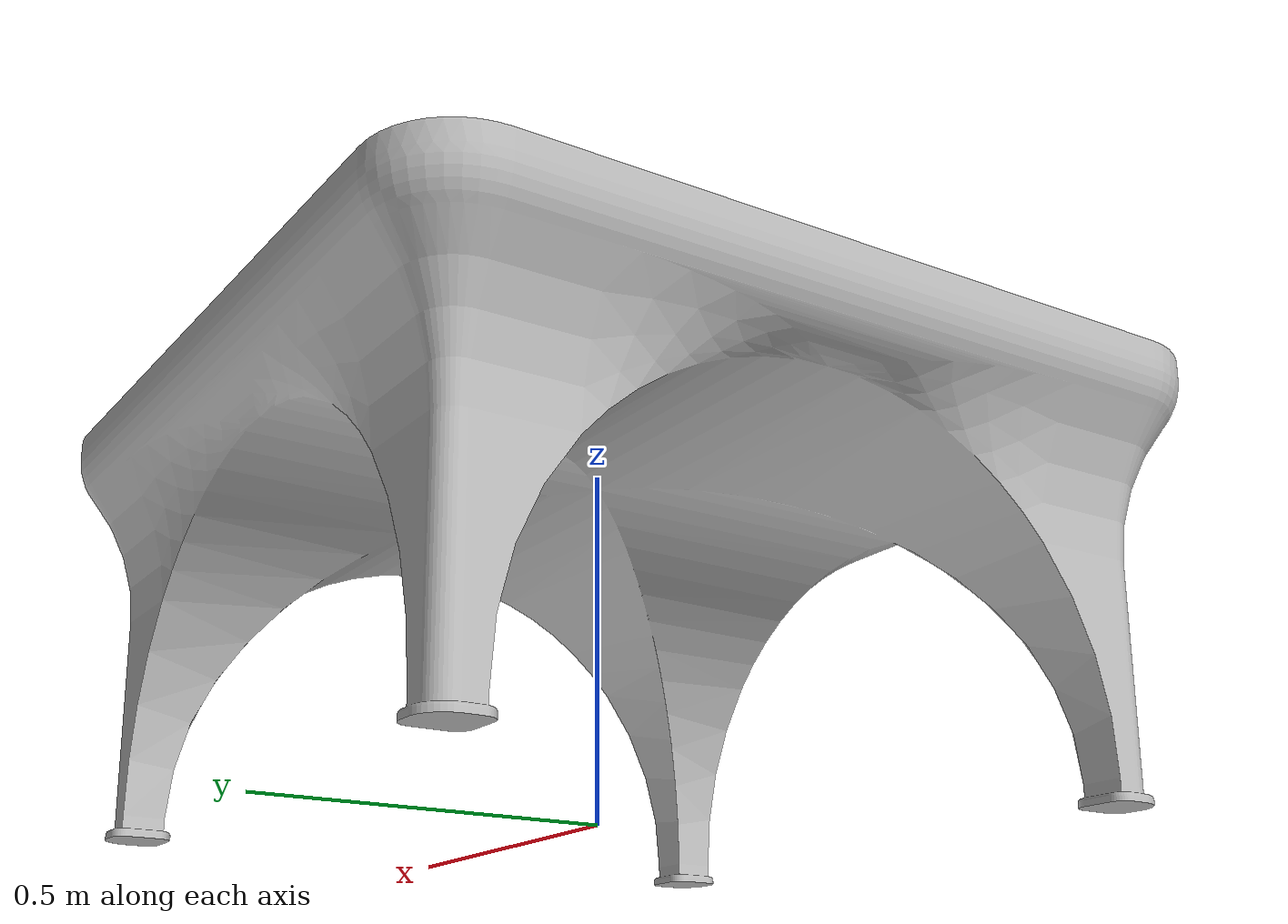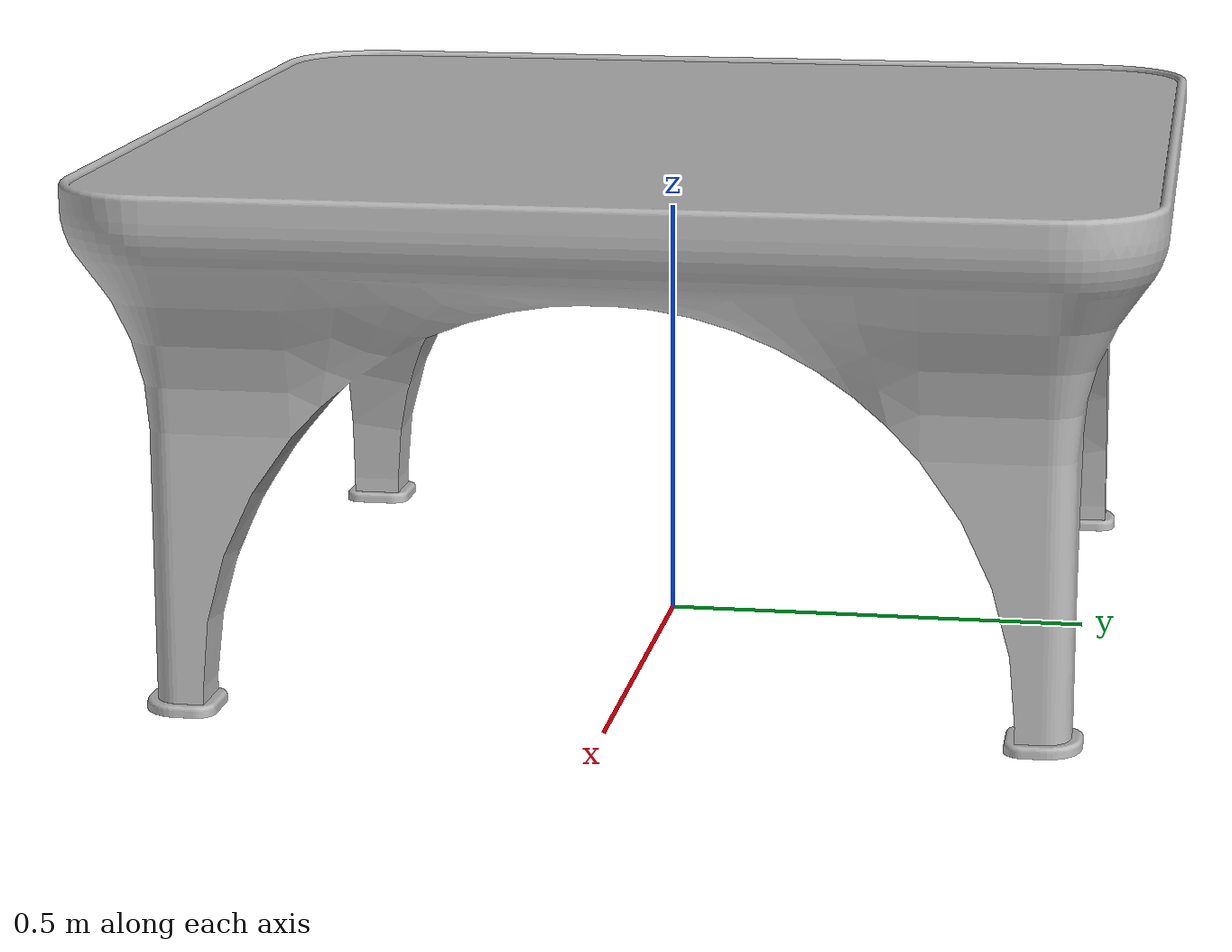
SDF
<?xml version='1.0' ?>
<sdf version="1.6">
    <model name="table_link">
        <static>true</static>
        <link name="link">
            <collision name="collision">
                <pose>0 0 0.001 1.5708 0 1.5708</pose>
                <geometry>
                    <mesh>
                        <uri>meshes/o_table_link.obj</uri>
                    </mesh>
                </geometry>
            </collision>
            <visual name="visual">
                <pose>0 0 0.001 1.5708 0 1.5708</pose>
                <geometry>
                    <mesh>
                        <uri>meshes/o_table_link.obj</uri>
                    </mesh>
                </geometry>
            </visual>
        </link>
    </model>
</sdf>
